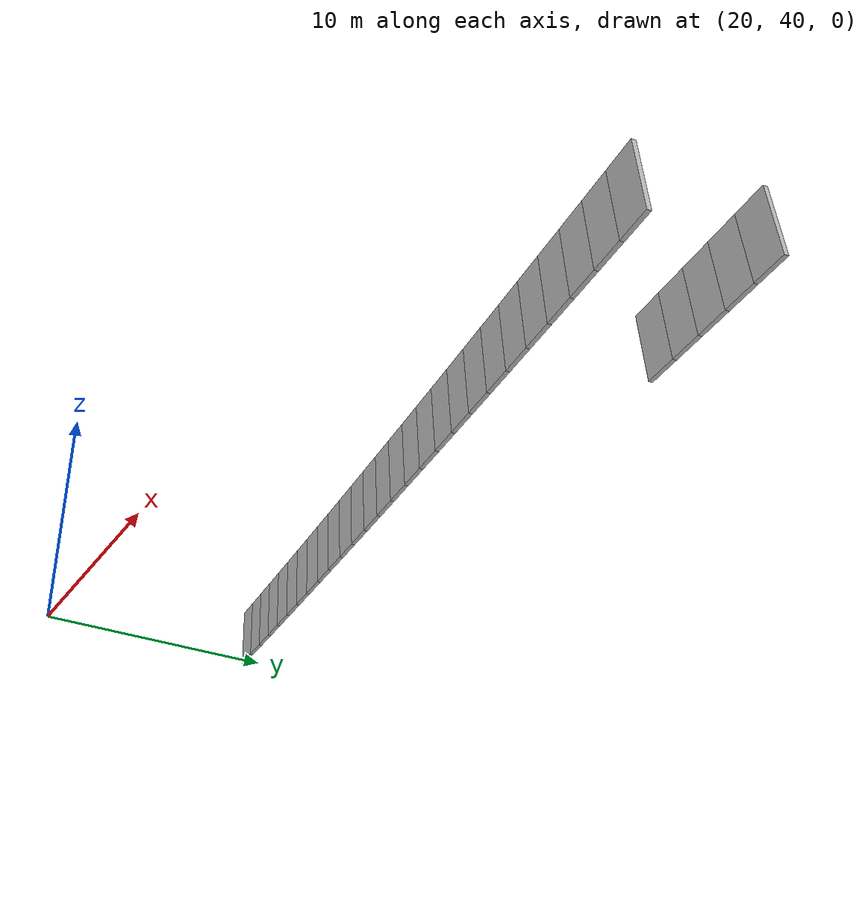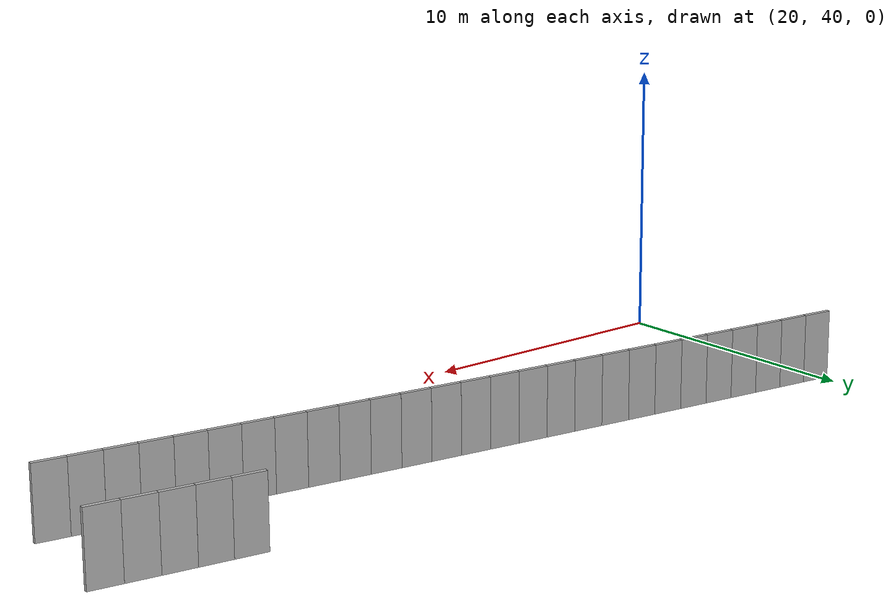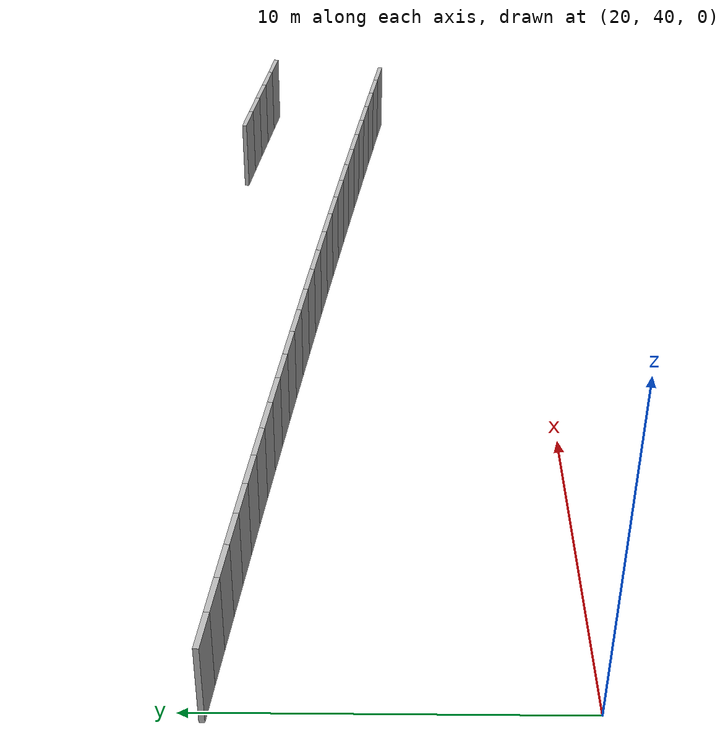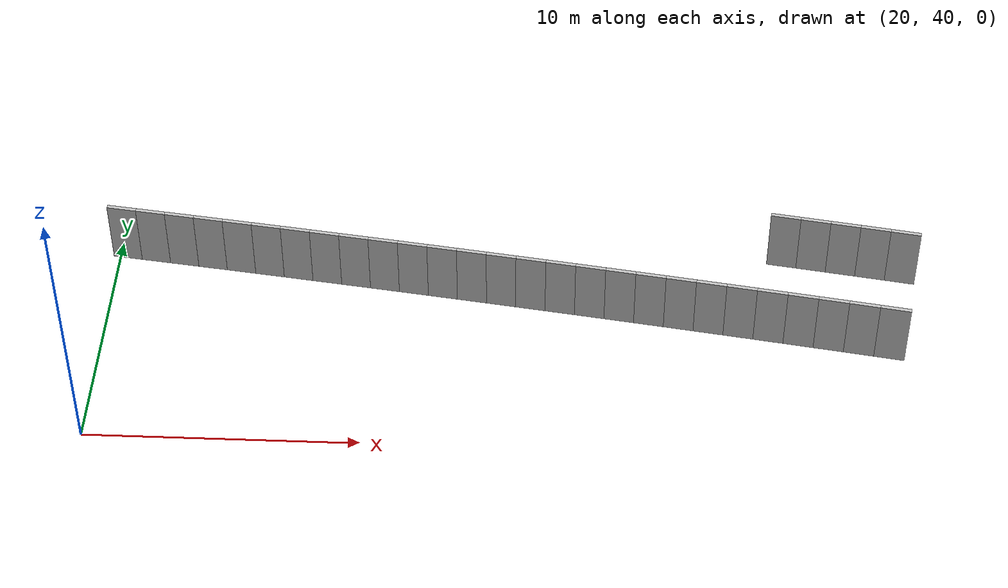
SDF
<?xml version="1.0" ?>
<sdf version="1.6">
  <model name="sps_2646">
    <pose frame="">0 0 0 0 -0 0</pose>
    <static>1</static>
    <self_collide>0</self_collide>
    <allow_auto_disable>0</allow_auto_disable>
    <link name="Wall3434">
      <kinematic>0</kinematic>
      <gravity>1</gravity>
      <self_collide>0</self_collide>
      <collision name="collision">
        <geometry>
          <box>
            <size>1.12141 0.15 2.5</size>
          </box>
        </geometry>
        <pose frame="">0 0 0 0 -0 0</pose>
      </collision>
      <visual name="visual">
        <geometry>
          <box>
            <size>1.12141 0.15 2.5</size>
          </box>
        </geometry>
        <pose frame="">0 0 0 0 -0 0</pose>
        <cast_shadows>1</cast_shadows>
        <transparency>0.0</transparency>
      </visual>
      <pose frame="">49.1249 45.1017 1.25 0 -0 2.98111</pose>
    </link>
    <link name="Wall3435">
      <kinematic>0</kinematic>
      <gravity>1</gravity>
      <self_collide>0</self_collide>
      <collision name="collision">
        <geometry>
          <box>
            <size>1.12136 0.15 2.5</size>
          </box>
        </geometry>
        <pose frame="">0 0 0 0 -0 0</pose>
      </collision>
      <visual name="visual">
        <geometry>
          <box>
            <size>1.12136 0.15 2.5</size>
          </box>
        </geometry>
        <pose frame="">0 0 0 0 -0 0</pose>
        <cast_shadows>1</cast_shadows>
        <transparency>0.0</transparency>
      </visual>
      <pose frame="">48.0178 45.2802 1.25 0 -0 2.98237</pose>
    </link>
    <link name="Wall3436">
      <kinematic>0</kinematic>
      <gravity>1</gravity>
      <self_collide>0</self_collide>
      <collision name="collision">
        <geometry>
          <box>
            <size>1.12138 0.15 2.5</size>
          </box>
        </geometry>
        <pose frame="">0 0 0 0 -0 0</pose>
      </collision>
      <visual name="visual">
        <geometry>
          <box>
            <size>1.12138 0.15 2.5</size>
          </box>
        </geometry>
        <pose frame="">0 0 0 0 -0 0</pose>
        <cast_shadows>1</cast_shadows>
        <transparency>0.0</transparency>
      </visual>
      <pose frame="">46.9105 45.4573 1.25 0 -0 2.98364</pose>
    </link>
    <link name="Wall3437">
      <kinematic>0</kinematic>
      <gravity>1</gravity>
      <self_collide>0</self_collide>
      <collision name="collision">
        <geometry>
          <box>
            <size>1.12138 0.15 2.5</size>
          </box>
        </geometry>
        <pose frame="">0 0 0 0 -0 0</pose>
      </collision>
      <visual name="visual">
        <geometry>
          <box>
            <size>1.12138 0.15 2.5</size>
          </box>
        </geometry>
        <pose frame="">0 0 0 0 -0 0</pose>
        <cast_shadows>1</cast_shadows>
        <transparency>0.0</transparency>
      </visual>
      <pose frame="">45.803 45.6331 1.25 0 -0 2.98469</pose>
    </link>
    <link name="Wall3438">
      <kinematic>0</kinematic>
      <gravity>1</gravity>
      <self_collide>0</self_collide>
      <collision name="collision">
        <geometry>
          <box>
            <size>1.12136 0.15 2.5</size>
          </box>
        </geometry>
        <pose frame="">0 0 0 0 -0 0</pose>
      </collision>
      <visual name="visual">
        <geometry>
          <box>
            <size>1.12136 0.15 2.5</size>
          </box>
        </geometry>
        <pose frame="">0 0 0 0 -0 0</pose>
        <cast_shadows>1</cast_shadows>
        <transparency>0.0</transparency>
      </visual>
      <pose frame="">44.6953 45.8077 1.25 0 -0 2.98584</pose>
    </link>
    <link name="Wall3439">
      <kinematic>0</kinematic>
      <gravity>1</gravity>
      <self_collide>0</self_collide>
      <collision name="collision">
        <geometry>
          <box>
            <size>1.12131 0.15 2.5</size>
          </box>
        </geometry>
        <pose frame="">0 0 0 0 -0 0</pose>
      </collision>
      <visual name="visual">
        <geometry>
          <box>
            <size>1.12131 0.15 2.5</size>
          </box>
        </geometry>
        <pose frame="">0 0 0 0 -0 0</pose>
        <cast_shadows>1</cast_shadows>
        <transparency>0.0</transparency>
      </visual>
      <pose frame="">43.5875 45.9809 1.25 0 -0 2.98721</pose>
    </link>
    <link name="Wall3440">
      <kinematic>0</kinematic>
      <gravity>1</gravity>
      <self_collide>0</self_collide>
      <collision name="collision">
        <geometry>
          <box>
            <size>1.12139 0.15 2.5</size>
          </box>
        </geometry>
        <pose frame="">0 0 0 0 -0 0</pose>
      </collision>
      <visual name="visual">
        <geometry>
          <box>
            <size>1.12139 0.15 2.5</size>
          </box>
        </geometry>
        <pose frame="">0 0 0 0 -0 0</pose>
        <cast_shadows>1</cast_shadows>
        <transparency>0.0</transparency>
      </visual>
      <pose frame="">42.4794 46.1528 1.25 0 -0 2.98816</pose>
    </link>
    <link name="Wall3441">
      <kinematic>0</kinematic>
      <gravity>1</gravity>
      <self_collide>0</self_collide>
      <collision name="collision">
        <geometry>
          <box>
            <size>1.12133 0.15 2.5</size>
          </box>
        </geometry>
        <pose frame="">0 0 0 0 -0 0</pose>
      </collision>
      <visual name="visual">
        <geometry>
          <box>
            <size>1.12133 0.15 2.5</size>
          </box>
        </geometry>
        <pose frame="">0 0 0 0 -0 0</pose>
        <cast_shadows>1</cast_shadows>
        <transparency>0.0</transparency>
      </visual>
      <pose frame="">41.3711 46.3234 1.25 0 -0 2.98958</pose>
    </link>
    <link name="Wall3442">
      <kinematic>0</kinematic>
      <gravity>1</gravity>
      <self_collide>0</self_collide>
      <collision name="collision">
        <geometry>
          <box>
            <size>1.12134 0.15 2.5</size>
          </box>
        </geometry>
        <pose frame="">0 0 0 0 -0 0</pose>
      </collision>
      <visual name="visual">
        <geometry>
          <box>
            <size>1.12134 0.15 2.5</size>
          </box>
        </geometry>
        <pose frame="">0 0 0 0 -0 0</pose>
        <cast_shadows>1</cast_shadows>
        <transparency>0.0</transparency>
      </visual>
      <pose frame="">40.2626 46.4926 1.25 0 -0 2.99063</pose>
    </link>
    <link name="Wall3443">
      <kinematic>0</kinematic>
      <gravity>1</gravity>
      <self_collide>0</self_collide>
      <collision name="collision">
        <geometry>
          <box>
            <size>1.12157 0.15 2.5</size>
          </box>
        </geometry>
        <pose frame="">0 0 0 0 -0 0</pose>
      </collision>
      <visual name="visual">
        <geometry>
          <box>
            <size>1.12157 0.15 2.5</size>
          </box>
        </geometry>
        <pose frame="">0 0 0 0 -0 0</pose>
        <cast_shadows>1</cast_shadows>
        <transparency>0.0</transparency>
      </visual>
      <pose frame="">39.1538 46.6606 1.25 0 -0 2.99181</pose>
    </link>
    <link name="Wall3444">
      <kinematic>0</kinematic>
      <gravity>1</gravity>
      <self_collide>0</self_collide>
      <collision name="collision">
        <geometry>
          <box>
            <size>1.12137 0.15 2.5</size>
          </box>
        </geometry>
        <pose frame="">0 0 0 0 -0 0</pose>
      </collision>
      <visual name="visual">
        <geometry>
          <box>
            <size>1.12137 0.15 2.5</size>
          </box>
        </geometry>
        <pose frame="">0 0 0 0 -0 0</pose>
        <cast_shadows>1</cast_shadows>
        <transparency>0.0</transparency>
      </visual>
      <pose frame="">38.0448 46.8273 1.25 0 -0 2.993</pose>
    </link>
    <link name="Wall3445">
      <kinematic>0</kinematic>
      <gravity>1</gravity>
      <self_collide>0</self_collide>
      <collision name="collision">
        <geometry>
          <box>
            <size>1.12134 0.15 2.5</size>
          </box>
        </geometry>
        <pose frame="">0 0 0 0 -0 0</pose>
      </collision>
      <visual name="visual">
        <geometry>
          <box>
            <size>1.12134 0.15 2.5</size>
          </box>
        </geometry>
        <pose frame="">0 0 0 0 -0 0</pose>
        <cast_shadows>1</cast_shadows>
        <transparency>0.0</transparency>
      </visual>
      <pose frame="">36.9357 46.9926 1.25 0 -0 2.99426</pose>
    </link>
    <link name="Wall3446">
      <kinematic>0</kinematic>
      <gravity>1</gravity>
      <self_collide>0</self_collide>
      <collision name="collision">
        <geometry>
          <box>
            <size>1.1214 0.15 2.5</size>
          </box>
        </geometry>
        <pose frame="">0 0 0 0 -0 0</pose>
      </collision>
      <visual name="visual">
        <geometry>
          <box>
            <size>1.1214 0.15 2.5</size>
          </box>
        </geometry>
        <pose frame="">0 0 0 0 -0 0</pose>
        <cast_shadows>1</cast_shadows>
        <transparency>0.0</transparency>
      </visual>
      <pose frame="">35.8263 47.1566 1.25 0 -0 2.99537</pose>
    </link>
    <link name="Wall3447">
      <kinematic>0</kinematic>
      <gravity>1</gravity>
      <self_collide>0</self_collide>
      <collision name="collision">
        <geometry>
          <box>
            <size>1.12132 0.15 2.5</size>
          </box>
        </geometry>
        <pose frame="">0 0 0 0 -0 0</pose>
      </collision>
      <visual name="visual">
        <geometry>
          <box>
            <size>1.12132 0.15 2.5</size>
          </box>
        </geometry>
        <pose frame="">0 0 0 0 -0 0</pose>
        <cast_shadows>1</cast_shadows>
        <transparency>0.0</transparency>
      </visual>
      <pose frame="">34.7168 47.3193 1.25 0 -0 2.99662</pose>
    </link>
    <link name="Wall3448">
      <kinematic>0</kinematic>
      <gravity>1</gravity>
      <self_collide>0</self_collide>
      <collision name="collision">
        <geometry>
          <box>
            <size>1.12136 0.15 2.5</size>
          </box>
        </geometry>
        <pose frame="">0 0 0 0 -0 0</pose>
      </collision>
      <visual name="visual">
        <geometry>
          <box>
            <size>1.12136 0.15 2.5</size>
          </box>
        </geometry>
        <pose frame="">0 0 0 0 -0 0</pose>
        <cast_shadows>1</cast_shadows>
        <transparency>0.0</transparency>
      </visual>
      <pose frame="">33.6072 47.4806 1.25 0 -0 2.99789</pose>
    </link>
    <link name="Wall3449">
      <kinematic>0</kinematic>
      <gravity>1</gravity>
      <self_collide>0</self_collide>
      <collision name="collision">
        <geometry>
          <box>
            <size>1.12164 0.15 2.5</size>
          </box>
        </geometry>
        <pose frame="">0 0 0 0 -0 0</pose>
      </collision>
      <visual name="visual">
        <geometry>
          <box>
            <size>1.12164 0.15 2.5</size>
          </box>
        </geometry>
        <pose frame="">0 0 0 0 -0 0</pose>
        <cast_shadows>1</cast_shadows>
        <transparency>0.0</transparency>
      </visual>
      <pose frame="">32.4972 47.6407 1.25 0 -0 2.99881</pose>
    </link>
    <link name="Wall3450">
      <kinematic>0</kinematic>
      <gravity>1</gravity>
      <self_collide>0</self_collide>
      <collision name="collision">
        <geometry>
          <box>
            <size>1.12118 0.15 2.5</size>
          </box>
        </geometry>
        <pose frame="">0 0 0 0 -0 0</pose>
      </collision>
      <visual name="visual">
        <geometry>
          <box>
            <size>1.12118 0.15 2.5</size>
          </box>
        </geometry>
        <pose frame="">0 0 0 0 -0 0</pose>
        <cast_shadows>1</cast_shadows>
        <transparency>0.0</transparency>
      </visual>
      <pose frame="">31.387 47.7995 1.25 0 -0 3.00018</pose>
    </link>
    <link name="Wall3451">
      <kinematic>0</kinematic>
      <gravity>1</gravity>
      <self_collide>0</self_collide>
      <collision name="collision">
        <geometry>
          <box>
            <size>1.1214 0.15 2.5</size>
          </box>
        </geometry>
        <pose frame="">0 0 0 0 -0 0</pose>
      </collision>
      <visual name="visual">
        <geometry>
          <box>
            <size>1.1214 0.15 2.5</size>
          </box>
        </geometry>
        <pose frame="">0 0 0 0 -0 0</pose>
        <cast_shadows>1</cast_shadows>
        <transparency>0.0</transparency>
      </visual>
      <pose frame="">30.2768 47.9568 1.25 0 -0 3.00147</pose>
    </link>
    <link name="Wall3452">
      <kinematic>0</kinematic>
      <gravity>1</gravity>
      <self_collide>0</self_collide>
      <collision name="collision">
        <geometry>
          <box>
            <size>1.12144 0.15 2.5</size>
          </box>
        </geometry>
        <pose frame="">0 0 0 0 -0 0</pose>
      </collision>
      <visual name="visual">
        <geometry>
          <box>
            <size>1.12144 0.15 2.5</size>
          </box>
        </geometry>
        <pose frame="">0 0 0 0 -0 0</pose>
        <cast_shadows>1</cast_shadows>
        <transparency>0.0</transparency>
      </visual>
      <pose frame="">29.1663 48.1129 1.25 0 -0 3.00241</pose>
    </link>
    <link name="Wall3453">
      <kinematic>0</kinematic>
      <gravity>1</gravity>
      <self_collide>0</self_collide>
      <collision name="collision">
        <geometry>
          <box>
            <size>1.1214 0.15 2.5</size>
          </box>
        </geometry>
        <pose frame="">0 0 0 0 -0 0</pose>
      </collision>
      <visual name="visual">
        <geometry>
          <box>
            <size>1.1214 0.15 2.5</size>
          </box>
        </geometry>
        <pose frame="">0 0 0 0 -0 0</pose>
        <cast_shadows>1</cast_shadows>
        <transparency>0.0</transparency>
      </visual>
      <pose frame="">28.0557 48.2677 1.25 0 -0 3.00384</pose>
    </link>
    <link name="Wall3454">
      <kinematic>0</kinematic>
      <gravity>1</gravity>
      <self_collide>0</self_collide>
      <collision name="collision">
        <geometry>
          <box>
            <size>1.12149 0.15 2.5</size>
          </box>
        </geometry>
        <pose frame="">0 0 0 0 -0 0</pose>
      </collision>
      <visual name="visual">
        <geometry>
          <box>
            <size>1.12149 0.15 2.5</size>
          </box>
        </geometry>
        <pose frame="">0 0 0 0 -0 0</pose>
        <cast_shadows>1</cast_shadows>
        <transparency>0.0</transparency>
      </visual>
      <pose frame="">26.9448 48.4211 1.25 0 -0 3.00489</pose>
    </link>
    <link name="Wall3455">
      <kinematic>0</kinematic>
      <gravity>1</gravity>
      <self_collide>0</self_collide>
      <collision name="collision">
        <geometry>
          <box>
            <size>1.12123 0.15 2.5</size>
          </box>
        </geometry>
        <pose frame="">0 0 0 0 -0 0</pose>
      </collision>
      <visual name="visual">
        <geometry>
          <box>
            <size>1.12123 0.15 2.5</size>
          </box>
        </geometry>
        <pose frame="">0 0 0 0 -0 0</pose>
        <cast_shadows>1</cast_shadows>
        <transparency>0.0</transparency>
      </visual>
      <pose frame="">25.8338 48.5732 1.25 0 -0 3.00618</pose>
    </link>
    <link name="Wall3456">
      <kinematic>0</kinematic>
      <gravity>1</gravity>
      <self_collide>0</self_collide>
      <collision name="collision">
        <geometry>
          <box>
            <size>1.12155 0.15 2.5</size>
          </box>
        </geometry>
        <pose frame="">0 0 0 0 -0 0</pose>
      </collision>
      <visual name="visual">
        <geometry>
          <box>
            <size>1.12155 0.15 2.5</size>
          </box>
        </geometry>
        <pose frame="">0 0 0 0 -0 0</pose>
        <cast_shadows>1</cast_shadows>
        <transparency>0.0</transparency>
      </visual>
      <pose frame="">24.7226 48.724 1.25 0 -0 3.00726</pose>
    </link>
    <link name="Wall3457">
      <kinematic>0</kinematic>
      <gravity>1</gravity>
      <self_collide>0</self_collide>
      <collision name="collision">
        <geometry>
          <box>
            <size>1.12131 0.15 2.5</size>
          </box>
        </geometry>
        <pose frame="">0 0 0 0 -0 0</pose>
      </collision>
      <visual name="visual">
        <geometry>
          <box>
            <size>1.12131 0.15 2.5</size>
          </box>
        </geometry>
        <pose frame="">0 0 0 0 -0 0</pose>
        <cast_shadows>1</cast_shadows>
        <transparency>0.0</transparency>
      </visual>
      <pose frame="">23.6111 48.8735 1.25 0 -0 3.00849</pose>
    </link>
    <link name="Wall3458">
      <kinematic>0</kinematic>
      <gravity>1</gravity>
      <self_collide>0</self_collide>
      <collision name="collision">
        <geometry>
          <box>
            <size>1.1213 0.15 2.5</size>
          </box>
        </geometry>
        <pose frame="">0 0 0 0 -0 0</pose>
      </collision>
      <visual name="visual">
        <geometry>
          <box>
            <size>1.1213 0.15 2.5</size>
          </box>
        </geometry>
        <pose frame="">0 0 0 0 -0 0</pose>
        <cast_shadows>1</cast_shadows>
        <transparency>0.0</transparency>
      </visual>
      <pose frame="">22.4997 49.0216 1.25 0 -0 3.00976</pose>
    </link>
    <link name="Wall3459">
      <kinematic>0</kinematic>
      <gravity>1</gravity>
      <self_collide>0</self_collide>
      <collision name="collision">
        <geometry>
          <box>
            <size>1.1212 0.15 2.5</size>
          </box>
        </geometry>
        <pose frame="">0 0 0 0 -0 0</pose>
      </collision>
      <visual name="visual">
        <geometry>
          <box>
            <size>1.1212 0.15 2.5</size>
          </box>
        </geometry>
        <pose frame="">0 0 0 0 -0 0</pose>
        <cast_shadows>1</cast_shadows>
        <transparency>0.0</transparency>
      </visual>
      <pose frame="">21.3881 49.1684 1.25 0 -0 3.01084</pose>
    </link>
    <link name="Wall3460">
      <kinematic>0</kinematic>
      <gravity>1</gravity>
      <self_collide>0</self_collide>
      <collision name="collision">
        <geometry>
          <box>
            <size>1.12142 0.15 2.5</size>
          </box>
        </geometry>
        <pose frame="">0 0 0 0 -0 0</pose>
      </collision>
      <visual name="visual">
        <geometry>
          <box>
            <size>1.12142 0.15 2.5</size>
          </box>
        </geometry>
        <pose frame="">0 0 0 0 -0 0</pose>
        <cast_shadows>1</cast_shadows>
        <transparency>0.0</transparency>
      </visual>
      <pose frame="">20.2762 49.314 1.25 0 -0 3.01191</pose>
    </link>
    <link name="Wall7284">
      <kinematic>0</kinematic>
      <gravity>1</gravity>
      <self_collide>0</self_collide>
      <collision name="collision">
        <geometry>
          <box>
            <size>1.12647 0.15 2.5</size>
          </box>
        </geometry>
        <pose frame="">0 0 0 0 -0 0</pose>
      </collision>
      <visual name="visual">
        <geometry>
          <box>
            <size>1.12647 0.15 2.5</size>
          </box>
        </geometry>
        <pose frame="">0 0 0 0 -0 0</pose>
        <cast_shadows>1</cast_shadows>
        <transparency>0.0</transparency>
      </visual>
      <pose frame="">49.7864 49.1887 1.25 0 -0 2.98112</pose>
    </link>
    <link name="Wall7285">
      <kinematic>0</kinematic>
      <gravity>1</gravity>
      <self_collide>0</self_collide>
      <collision name="collision">
        <geometry>
          <box>
            <size>1.12625 0.15 2.5</size>
          </box>
        </geometry>
        <pose frame="">0 0 0 0 -0 0</pose>
      </collision>
      <visual name="visual">
        <geometry>
          <box>
            <size>1.12625 0.15 2.5</size>
          </box>
        </geometry>
        <pose frame="">0 0 0 0 -0 0</pose>
        <cast_shadows>1</cast_shadows>
        <transparency>0.0</transparency>
      </visual>
      <pose frame="">48.6744 49.368 1.25 0 -0 2.98235</pose>
    </link>
    <link name="Wall7286">
      <kinematic>0</kinematic>
      <gravity>1</gravity>
      <self_collide>0</self_collide>
      <collision name="collision">
        <geometry>
          <box>
            <size>1.12621 0.15 2.5</size>
          </box>
        </geometry>
        <pose frame="">0 0 0 0 -0 0</pose>
      </collision>
      <visual name="visual">
        <geometry>
          <box>
            <size>1.12621 0.15 2.5</size>
          </box>
        </geometry>
        <pose frame="">0 0 0 0 -0 0</pose>
        <cast_shadows>1</cast_shadows>
        <transparency>0.0</transparency>
      </visual>
      <pose frame="">47.5623 49.5459 1.25 0 -0 2.98361</pose>
    </link>
    <link name="Wall7287">
      <kinematic>0</kinematic>
      <gravity>1</gravity>
      <self_collide>0</self_collide>
      <collision name="collision">
        <geometry>
          <box>
            <size>1.12645 0.15 2.5</size>
          </box>
        </geometry>
        <pose frame="">0 0 0 0 -0 0</pose>
      </collision>
      <visual name="visual">
        <geometry>
          <box>
            <size>1.12645 0.15 2.5</size>
          </box>
        </geometry>
        <pose frame="">0 0 0 0 -0 0</pose>
        <cast_shadows>1</cast_shadows>
        <transparency>0.0</transparency>
      </visual>
      <pose frame="">46.4499 49.7225 1.25 0 -0 2.98468</pose>
    </link>
    <link name="Wall7288">
      <kinematic>0</kinematic>
      <gravity>1</gravity>
      <self_collide>0</self_collide>
      <collision name="collision">
        <geometry>
          <box>
            <size>1.12623 0.15 2.5</size>
          </box>
        </geometry>
        <pose frame="">0 0 0 0 -0 0</pose>
      </collision>
      <visual name="visual">
        <geometry>
          <box>
            <size>1.12623 0.15 2.5</size>
          </box>
        </geometry>
        <pose frame="">0 0 0 0 -0 0</pose>
        <cast_shadows>1</cast_shadows>
        <transparency>0.0</transparency>
      </visual>
      <pose frame="">45.3373 49.8978 1.25 0 -0 2.98591</pose>
    </link>
  </model>
</sdf>
